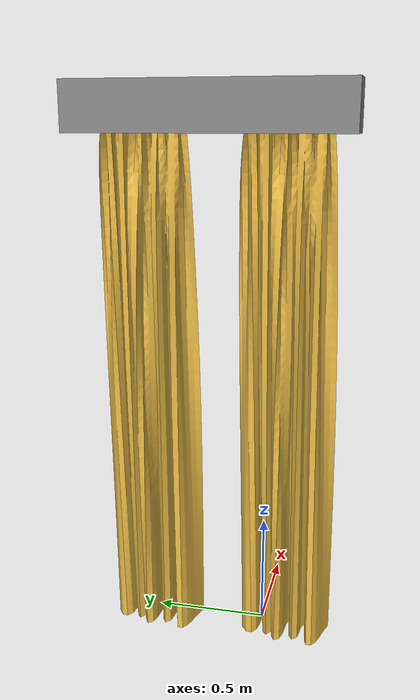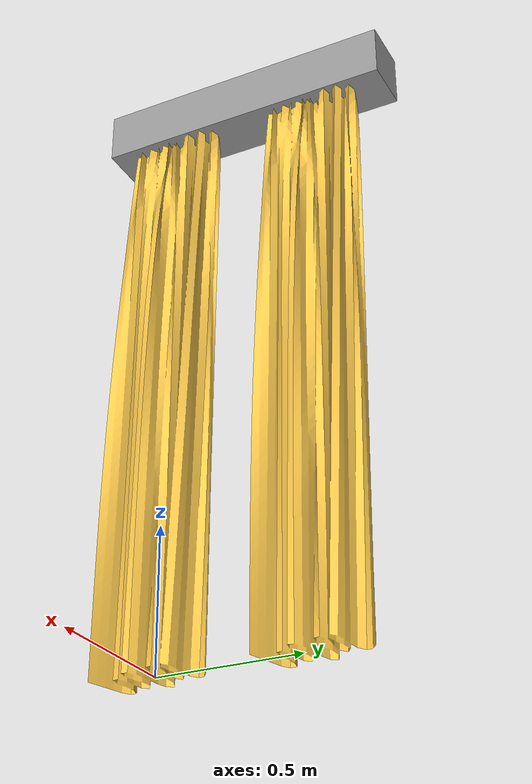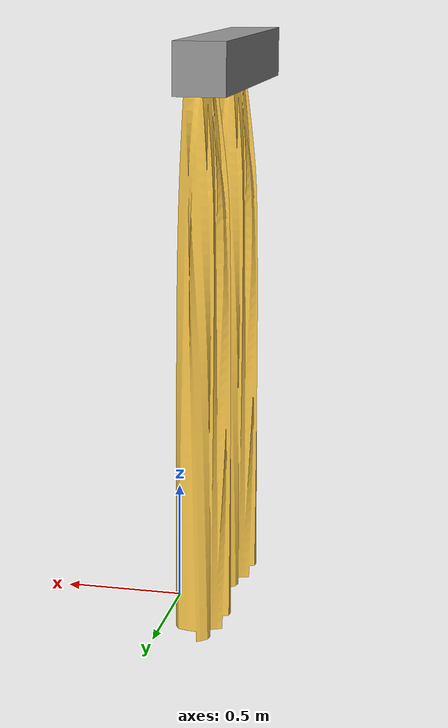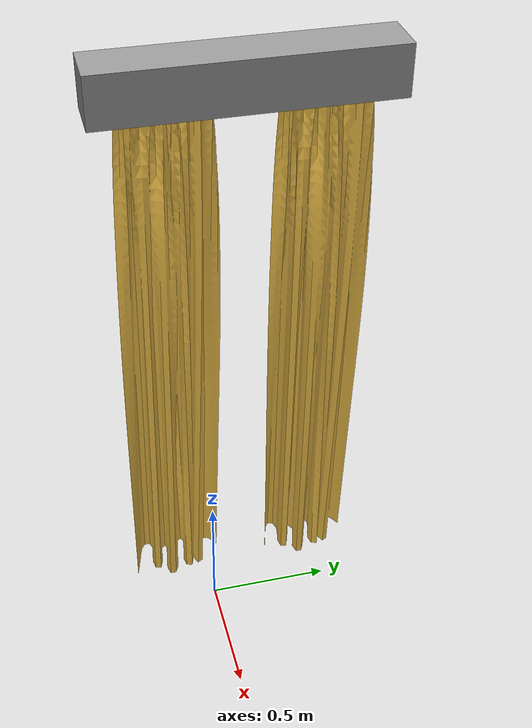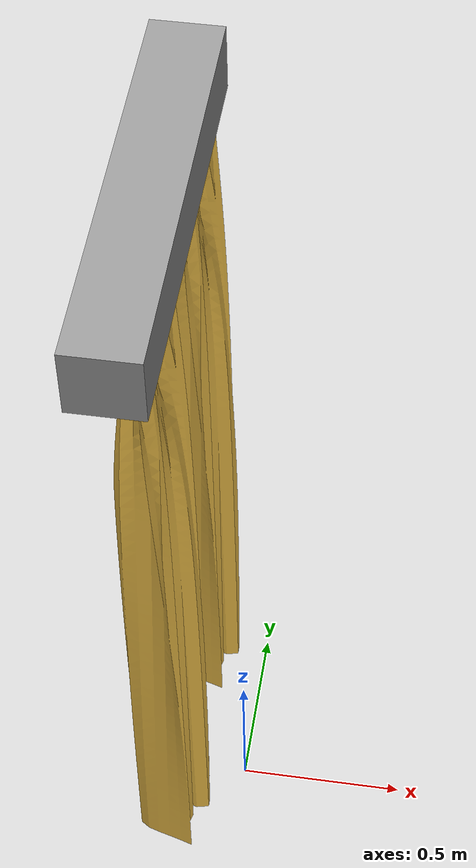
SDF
<?xml version='1.0'?>
<sdf version='1.7'>
  <model name='my_curtains_v2'>
    <link name='link_0'>
      <inertial>
        <mass>1</mass>
        <inertia>
          <ixx>0.166667</ixx>
          <ixy>0</ixy>
          <ixz>0</ixz>
          <iyy>0.166667</iyy>
          <iyz>0</iyz>
          <izz>0.166667</izz>
        </inertia>
        <pose>0 0 0 0 -0 0</pose>
      </inertial>
      <pose>-0.196447 0.34663 -0.060343 0 -0 1.5714</pose>
      <gravity>1</gravity>
      <self_collide>0</self_collide>
      <kinematic>0</kinematic>
      <enable_wind>0</enable_wind>
      <visual name='visual'>
        <pose>0 0 1.28 0 -0 0</pose>
        <geometry>
          <mesh>
            <uri>/home/massari/workspace/catkin_ws/src/my_robot/models/my_curtains/../../meshes/my_curtain.dae</uri>
            <scale>0.6 1 1.15</scale>
          </mesh>
        </geometry>
        <material>
          <lighting>1</lighting>
          <script>
            <uri>file://media/materials/scripts/gazebo.material</uri>
            <name>Gazebo/Grey</name>
          </script>
          <shader type='pixel'>
            <normal_map>__default__</normal_map>
          </shader>
          <ambient>1 0.8 0.3 1</ambient>
          <diffuse>1 0.8 0.3 1</diffuse>
          <specular>0.01 0.01 0.01 1</specular>
          <emissive>0 0 0 1</emissive>
        </material>
        <transparency>0</transparency>
        <cast_shadows>1</cast_shadows>
      </visual>
      <collision name='collision'>
        <laser_retro>0</laser_retro>
        <max_contacts>10</max_contacts>
        <pose>0 0 1.28 0 -0 0</pose>
        <geometry>
          <mesh>
            <uri>/home/massari/workspace/catkin_ws/src/my_robot/models/my_curtains/../../meshes/my_curtain.dae</uri>
            <scale>0.6 1 1.15</scale>
          </mesh>
        </geometry>
        <surface>
          <friction>
            <ode>
              <mu>1</mu>
              <mu2>1</mu2>
              <fdir1>0 0 0</fdir1>
              <slip1>0</slip1>
              <slip2>0</slip2>
            </ode>
            <torsional>
              <coefficient>1</coefficient>
              <patch_radius>0</patch_radius>
              <surface_radius>0</surface_radius>
              <use_patch_radius>1</use_patch_radius>
              <ode>
                <slip>0</slip>
              </ode>
            </torsional>
          </friction>
          <bounce>
            <restitution_coefficient>0</restitution_coefficient>
            <threshold>1e+06</threshold>
          </bounce>
          <contact>
            <collide_without_contact>0</collide_without_contact>
            <collide_without_contact_bitmask>1</collide_without_contact_bitmask>
            <collide_bitmask>1</collide_bitmask>
            <ode>
              <soft_cfm>0</soft_cfm>
              <soft_erp>0.2</soft_erp>
              <kp>1e+13</kp>
              <kd>1</kd>
              <max_vel>0.01</max_vel>
              <min_depth>0</min_depth>
            </ode>
            <bullet>
              <split_impulse>1</split_impulse>
              <split_impulse_penetration_threshold>-0.01</split_impulse_penetration_threshold>
              <soft_cfm>0</soft_cfm>
              <soft_erp>0.2</soft_erp>
              <kp>1e+13</kp>
              <kd>1</kd>
            </bullet>
          </contact>
        </surface>
      </collision>
    </link>
    <link name='link_0_clone'>
      <inertial>
        <mass>1</mass>
        <inertia>
          <ixx>0.166667</ixx>
          <ixy>0</ixy>
          <ixz>0</ixz>
          <iyy>0.166667</iyy>
          <iyz>0</iyz>
          <izz>0.166667</izz>
        </inertia>
        <pose>0 0 0 0 -0 0</pose>
      </inertial>
      <pose>-0.192892 0.930317 -0.060343 0 -0 1.5714</pose>
      <gravity>1</gravity>
      <self_collide>0</self_collide>
      <kinematic>0</kinematic>
      <enable_wind>0</enable_wind>
      <visual name='visual'>
        <pose>0 0 1.28 0 -0 0</pose>
        <geometry>
          <mesh>
            <uri>/home/massari/workspace/catkin_ws/src/my_robot/models/my_curtains/../../meshes/my_curtain.dae</uri>
            <scale>0.6 1 1.15</scale>
          </mesh>
        </geometry>
        <material>
          <lighting>1</lighting>
          <script>
            <uri>file://media/materials/scripts/gazebo.material</uri>
            <name>Gazebo/Grey</name>
          </script>
          <shader type='pixel'>
            <normal_map>__default__</normal_map>
          </shader>
          <ambient>1 0.8 0.3 1</ambient>
          <diffuse>1 0.8 0.3 1</diffuse>
          <specular>0.01 0.01 0.01 1</specular>
          <emissive>0 0 0 1</emissive>
        </material>
        <transparency>0</transparency>
        <cast_shadows>1</cast_shadows>
      </visual>
      <collision name='collision'>
        <laser_retro>0</laser_retro>
        <max_contacts>10</max_contacts>
        <pose>0 0 1.28 0 -0 0</pose>
        <geometry>
          <mesh>
            <uri>/home/massari/workspace/catkin_ws/src/my_robot/models/my_curtains/../../meshes/my_curtain.dae</uri>
            <scale>0.6 1 1.15</scale>
          </mesh>
        </geometry>
        <surface>
          <friction>
            <ode>
              <mu>1</mu>
              <mu2>1</mu2>
              <fdir1>0 0 0</fdir1>
              <slip1>0</slip1>
              <slip2>0</slip2>
            </ode>
            <torsional>
              <coefficient>1</coefficient>
              <patch_radius>0</patch_radius>
              <surface_radius>0</surface_radius>
              <use_patch_radius>1</use_patch_radius>
              <ode>
                <slip>0</slip>
              </ode>
            </torsional>
          </friction>
          <bounce>
            <restitution_coefficient>0</restitution_coefficient>
            <threshold>1e+06</threshold>
          </bounce>
          <contact>
            <collide_without_contact>0</collide_without_contact>
            <collide_without_contact_bitmask>1</collide_without_contact_bitmask>
            <collide_bitmask>1</collide_bitmask>
            <ode>
              <soft_cfm>0</soft_cfm>
              <soft_erp>0.2</soft_erp>
              <kp>1e+13</kp>
              <kd>1</kd>
              <max_vel>0.01</max_vel>
              <min_depth>0</min_depth>
            </ode>
            <bullet>
              <split_impulse>1</split_impulse>
              <split_impulse_penetration_threshold>-0.01</split_impulse_penetration_threshold>
              <soft_cfm>0</soft_cfm>
              <soft_erp>0.2</soft_erp>
              <kp>1e+13</kp>
              <kd>1</kd>
            </bullet>
          </contact>
        </surface>
      </collision>
    </link>
    <link name='link_2'>
      <inertial>
        <mass>1</mass>
        <inertia>
          <ixx>0.166667</ixx>
          <ixy>0</ixy>
          <ixz>0</ixz>
          <iyy>0.166667</iyy>
          <iyz>0</iyz>
          <izz>0.166667</izz>
        </inertia>
        <pose>0 0 0 0 -0 0</pose>
      </inertial>
      <pose>-0.239313 0.203562 1.05159 0 -0 0</pose>
      <gravity>1</gravity>
      <self_collide>0</self_collide>
      <kinematic>0</kinematic>
      <enable_wind>0</enable_wind>
      <visual name='visual'>
        <pose>0 0 1.28 0 -0 0</pose>
        <geometry>
          <box>
            <size>0.2 1.15 0.2</size>
          </box>
        </geometry>
        <material>
          <lighting>1</lighting>
          <script>
            <uri>file://media/materials/scripts/gazebo.material</uri>
            <name>Gazebo/Grey</name>
          </script>
          <shader type='pixel'>
            <normal_map>__default__</normal_map>
          </shader>
          <ambient>0.9 0.9 0.9 1</ambient>
          <diffuse>0.9 0.9 0.9 1</diffuse>
          <specular>0.01 0.01 0.01 1</specular>
          <emissive>0 0 0 1</emissive>
        </material>
        <transparency>0</transparency>
        <cast_shadows>1</cast_shadows>
      </visual>
      <collision name='collision'>
        <laser_retro>0</laser_retro>
        <max_contacts>10</max_contacts>
        <pose>0 0 1.28 0 -0 0</pose>
        <geometry>
          <box>
            <size>0.2 1.15 0.2</size>
          </box>
        </geometry>
        <surface>
          <friction>
            <ode>
              <mu>1</mu>
              <mu2>1</mu2>
              <fdir1>0 0 0</fdir1>
              <slip1>0</slip1>
              <slip2>0</slip2>
            </ode>
            <torsional>
              <coefficient>1</coefficient>
              <patch_radius>0</patch_radius>
              <surface_radius>0</surface_radius>
              <use_patch_radius>1</use_patch_radius>
              <ode>
                <slip>0</slip>
              </ode>
            </torsional>
          </friction>
          <bounce>
            <restitution_coefficient>0</restitution_coefficient>
            <threshold>1e+06</threshold>
          </bounce>
          <contact>
            <collide_without_contact>0</collide_without_contact>
            <collide_without_contact_bitmask>1</collide_without_contact_bitmask>
            <collide_bitmask>1</collide_bitmask>
            <ode>
              <soft_cfm>0</soft_cfm>
              <soft_erp>0.2</soft_erp>
              <kp>1e+13</kp>
              <kd>1</kd>
              <max_vel>0.01</max_vel>
              <min_depth>0</min_depth>
            </ode>
            <bullet>
              <split_impulse>1</split_impulse>
              <split_impulse_penetration_threshold>-0.01</split_impulse_penetration_threshold>
              <soft_cfm>0</soft_cfm>
              <soft_erp>0.2</soft_erp>
              <kp>1e+13</kp>
              <kd>1</kd>
            </bullet>
          </contact>
        </surface>
      </collision>
    </link>
    <static>1</static>
    <allow_auto_disable>1</allow_auto_disable>
  </model>
</sdf>
